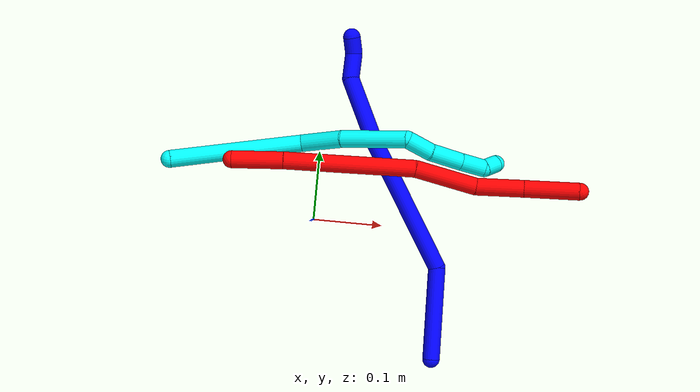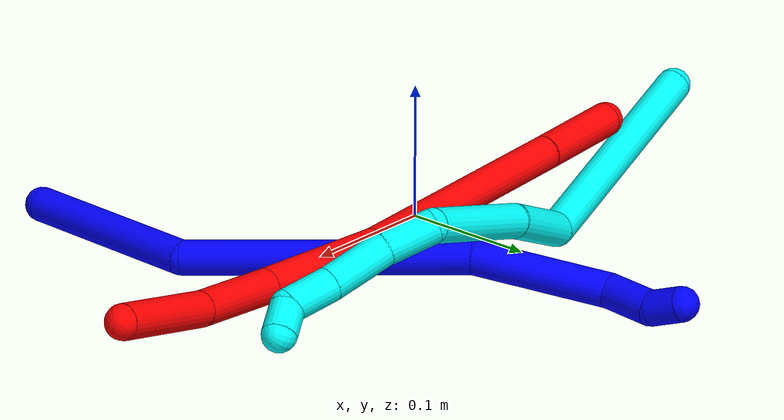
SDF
<sdf version="1.7">
 <world name="default">
  <plugin name="TubeGeneratorPlugin" filename="libtube_generator_plugin.so"/>
  <model name="photoneo_s_sensor">
   <static>1</static>
   <pose>0 0 2 1.57079 1.57079 3.14159</pose>
   <link name="link">
    <inertial><mass>0.1</mass></inertial>
    <sensor name="sensor" type="depth">
     <update_rate>30</update_rate>
     <camera>
      <horizontal_fov>1.22</horizontal_fov>
      <image><width>1920</width><height>1200</height><format>B8G8R8</format></image>
      <clip><near>0.1</near><far>4</far></clip>
      <depth_camera><output>points</output></depth_camera>
     </camera>
     <plugin name="camera_plugin" filename="libgazebo_ros_depth_camera.so">
      <baseline>0.2</baseline>
      <alwaysOn>1</alwaysOn>
      <updateRate>0.0</updateRate>
      <cameraName>camera_ir</cameraName>
      <imageTopicName>/camera/color/image_raw</imageTopicName>
      <cameraInfoTopicName>/camera/color/camera_info</cameraInfoTopicName>
      <depthImageTopicName>/camera/depth/image_raw</depthImageTopicName>
      <depthImageCameraInfoTopicName>/camera/depth/camera_info</depthImageCameraInfoTopicName>
      <pointCloudTopicName>/camera/depth/points</pointCloudTopicName>
      <frameName>fr_optical</frameName>
      <pointCloudCutoff>0.1</pointCloudCutoff>
      <pointCloudCutoffMax>2.0</pointCloudCutoffMax>
      <distortionK1>0</distortionK1>
      <distortionK2>0</distortionK2>
      <distortionK3>0</distortionK3>
      <distortionT1>0</distortionT1>
      <distortionT2>0</distortionT2>
      <CxPrime>0</CxPrime>
      <Cx>0</Cx>
      <Cy>0</Cy>
      <focalLength>0</focalLength>
      <hackBaseline>0</hackBaseline>
     </plugin>
    </sensor>
   </link>
  </model>
  <gravity>0 0 -9.8</gravity>
  <magnetic_field>6e-06 2.3e-05 -4.2e-05</magnetic_field>
  <atmosphere type="adiabatic"/>
  <physics name="default_physics" default="0" type="ode">
   <max_step_size>0.003</max_step_size>
   <real_time_factor>1</real_time_factor>
   <real_time_update_rate>1000</real_time_update_rate>
   <max_contacts>10000</max_contacts>
   <ode>
    <solver>
     <type>quick</type>
     <iters>100</iters>
     <sor>1.3</sor>
     <use_dynamic_moi_rescaling>0</use_dynamic_moi_rescaling>
    </solver>
    <constraints>
     <contact_max_correcting_vel>0</contact_max_correcting_vel>
     <contact_surface_layer>0.001</contact_surface_layer>
     <cfm>0</cfm>
     <erp>0.2</erp>
    </constraints>
   </ode>
  </physics>
  <scene><ambient>0.4 0.4 0.4 1</ambient><background>0.7 0.7 0.7 1</background><shadows>0</shadows></scene>
  <audio><device>default</device></audio>
  <spherical_coordinates>
   <surface_model>EARTH_WGS84</surface_model>
   <latitude_deg>0</latitude_deg>
   <longitude_deg>0</longitude_deg>
   <elevation>0</elevation>
   <heading_deg>0</heading_deg>
  </spherical_coordinates>
  <model name="bin">
   <static>1</static>
   <link name="bottom">
    <collision name="collision-bottom">
     <pose>0 0 -0.01 0 -0 0</pose>
     <geometry><box><size>0.8 0.6 0.02</size></box></geometry>
     <surface>
      <friction><ode><mu>100</mu><mu2>100</mu2></ode></friction>
      <contact><collide_bitmask>65535</collide_bitmask></contact>
     </surface>
    </collision>
   </link>
   <link name="west_wall">
    <collision name="collision-west_wall">
     <pose>-0.41 0 0.1 0 -0 0</pose>
     <geometry><box><size>0.02 0.6 0.2</size></box></geometry>
     <surface>
      <friction><ode><mu>100</mu><mu2>100</mu2></ode></friction>
      <contact><collide_bitmask>65535</collide_bitmask></contact>
     </surface>
    </collision>
   </link>
   <link name="east_wall">
    <collision name="collision-east_wall">
     <pose>0.41 0 0.1 0 -0 0</pose>
     <geometry><box><size>0.02 0.6 0.2</size></box></geometry>
     <surface>
      <friction><ode><mu>100</mu><mu2>100</mu2></ode></friction>
      <contact><collide_bitmask>65535</collide_bitmask></contact>
     </surface>
    </collision>
   </link>
   <link name="south_wall">
    <collision name="collision-south_wall">
     <pose>0 -0.31 0.1 0 -0 0</pose>
     <geometry><box><size>0.8 0.02 0.2</size></box></geometry>
     <surface>
      <friction><ode><mu>100</mu><mu2>100</mu2></ode></friction>
      <contact><collide_bitmask>65535</collide_bitmask></contact>
     </surface>
    </collision>
   </link>
   <link name="north_wall">
    <collision name="collision-north_wall">
     <pose>0 0.31 0.1 0 -0 0</pose>
     <geometry><box><size>0.8 0.02 0.2</size></box></geometry>
     <surface>
      <friction><ode><mu>100</mu><mu2>100</mu2></ode></friction>
      <contact><collide_bitmask>65535</collide_bitmask></contact>
     </surface>
    </collision>
   </link>
  </model>
  <model name="1">
   <static>0</static>
   <link name="1">
    <collision name="collision-cylinder-e_1_1_4">
     <pose>0.023675 0.035769 0.051151 -0.610234 0.362543 -0.115323</pose>
     <geometry><cylinder><radius>0.0125</radius><length>0.133512</length></cylinder></geometry>
     <surface>
      <friction><ode><mu>1.16</mu><mu2>1.16</mu2><slip1>0</slip1><slip2>0</slip2></ode></friction>
      <contact><ode><kp>1e+06</kp><kd>1</kd><max_vel>0</max_vel><min_depth>0.001</min_depth></ode></contact>
     </surface>
    </collision>
    <visual name="visual-cylinder-e_1_1_4">
     <pose>0.023675 0.035769 0.051151 -0.610234 0.362543 -0.115323</pose>
     <geometry><cylinder><radius>0.0125</radius><length>0.133512</length></cylinder></geometry>
     <material><ambient>0 0 1 1</ambient></material>
    </visual>
    <collision name="collision-cylinder-e_2_4_5">
     <pose>0.030447 0.119804 0.192104 -0.493188 -0.164309 0.041447</pose>
     <geometry><cylinder><radius>0.0125</radius><length>0.206685</length></cylinder></geometry>
     <surface>
      <friction><ode><mu>1.16</mu><mu2>1.16</mu2><slip1>0</slip1><slip2>0</slip2></ode></friction>
      <contact><ode><kp>1e+06</kp><kd>1</kd><max_vel>0</max_vel><min_depth>0.001</min_depth></ode></contact>
     </surface>
    </collision>
    <visual name="visual-cylinder-e_2_4_5">
     <pose>0.030447 0.119804 0.192104 -0.493188 -0.164309 0.041447</pose>
     <geometry><cylinder><radius>0.0125</radius><length>0.206685</length></cylinder></geometry>
     <material><ambient>0 0 1 1</ambient></material>
    </visual>
    <collision name="collision-cylinder-e_3_5_6">
     <pose>0.010699 0.199902 0.318902 -0.71048 -0.058209 0.021599</pose>
     <geometry><cylinder><radius>0.0125</radius><length>0.097777</length></cylinder></geometry>
     <surface>
      <friction><ode><mu>1.16</mu><mu2>1.16</mu2><slip1>0</slip1><slip2>0</slip2></ode></friction>
      <contact><ode><kp>1e+06</kp><kd>1</kd><max_vel>0</max_vel><min_depth>0.001</min_depth></ode></contact>
     </surface>
    </collision>
    <visual name="visual-cylinder-e_3_5_6">
     <pose>0.010699 0.199902 0.318902 -0.71048 -0.058209 0.021599</pose>
     <geometry><cylinder><radius>0.0125</radius><length>0.097777</length></cylinder></geometry>
     <material><ambient>0 0 1 1</ambient></material>
    </visual>
    <collision name="collision-cylinder-e_4_6_7">
     <pose>0.015536 0.241902 0.369867 -0.629252 0.418331 -0.137942</pose>
     <geometry><cylinder><radius>0.0125</radius><length>0.037816</length></cylinder></geometry>
     <surface>
      <friction><ode><mu>1.16</mu><mu2>1.16</mu2><slip1>0</slip1><slip2>0</slip2></ode></friction>
      <contact><ode><kp>1e+06</kp><kd>1</kd><max_vel>0</max_vel><min_depth>0.001</min_depth></ode></contact>
     </surface>
    </collision>
    <visual name="visual-cylinder-e_4_6_7">
     <pose>0.015536 0.241902 0.369867 -0.629252 0.418331 -0.137942</pose>
     <geometry><cylinder><radius>0.0125</radius><length>0.037816</length></cylinder></geometry>
     <material><ambient>0 0 1 1</ambient></material>
    </visual>
    <collision name="collision-cylinder-e_5_7_2">
     <pose>0.0252 0.25483 0.395454 -0.233211 0.164569 -0.01932</pose>
     <geometry><cylinder><radius>0.0125</radius><length>0.02421</length></cylinder></geometry>
     <surface>
      <friction><ode><mu>1.16</mu><mu2>1.16</mu2><slip1>0</slip1><slip2>0</slip2></ode></friction>
      <contact><ode><kp>1e+06</kp><kd>1</kd><max_vel>0</max_vel><min_depth>0.001</min_depth></ode></contact>
     </surface>
    </collision>
    <visual name="visual-cylinder-e_5_7_2">
     <pose>0.0252 0.25483 0.395454 -0.233211 0.164569 -0.01932</pose>
     <geometry><cylinder><radius>0.0125</radius><length>0.02421</length></cylinder></geometry>
     <material><ambient>0 0 1 1</ambient></material>
    </visual>
    <collision name="collision-sphere-2">
     <pose>0.027183 0.25759 0.407072 0 -0 0</pose>
     <geometry><sphere><radius>0.0125</radius></sphere></geometry>
     <surface>
      <friction><ode><mu>1.16</mu><mu2>1.16</mu2><slip1>0</slip1><slip2>0</slip2></ode></friction>
      <contact><ode><kp>1e+06</kp><kd>1</kd><max_vel>0</max_vel><min_depth>0.001</min_depth></ode></contact>
     </surface>
    </collision>
    <visual name="visual-sphere-2">
     <pose>0.027183 0.25759 0.407072 0 -0 0</pose>
     <geometry><sphere><radius>0.0125</radius></sphere></geometry>
     <material><ambient>0 0 1 1</ambient></material>
    </visual>
    <collision name="collision-sphere-7">
     <pose>0.023217 0.25207 0.383836 0 -0 0</pose>
     <geometry><sphere><radius>0.0125</radius></sphere></geometry>
     <surface>
      <friction><ode><mu>1.16</mu><mu2>1.16</mu2><slip1>0</slip1><slip2>0</slip2></ode></friction>
      <contact><ode><kp>1e+06</kp><kd>1</kd><max_vel>0</max_vel><min_depth>0.001</min_depth></ode></contact>
     </surface>
    </collision>
    <visual name="visual-sphere-7">
     <pose>0.023217 0.25207 0.383836 0 -0 0</pose>
     <geometry><sphere><radius>0.0125</radius></sphere></geometry>
     <material><ambient>0 0 1 1</ambient></material>
    </visual>
    <collision name="collision-sphere-6">
     <pose>0.007855 0.231733 0.355899 0 -0 0</pose>
     <geometry><sphere><radius>0.0125</radius></sphere></geometry>
     <surface>
      <friction><ode><mu>1.16</mu><mu2>1.16</mu2><slip1>0</slip1><slip2>0</slip2></ode></friction>
      <contact><ode><kp>1e+06</kp><kd>1</kd><max_vel>0</max_vel><min_depth>0.001</min_depth></ode></contact>
     </surface>
    </collision>
    <visual name="visual-sphere-6">
     <pose>0.007855 0.231733 0.355899 0 -0 0</pose>
     <geometry><sphere><radius>0.0125</radius></sphere></geometry>
     <material><ambient>0 0 1 1</ambient></material>
    </visual>
    <collision name="collision-sphere-5">
     <pose>0.013543 0.168071 0.281905 0 -0 0</pose>
     <geometry><sphere><radius>0.0125</radius></sphere></geometry>
     <surface>
      <friction><ode><mu>1.16</mu><mu2>1.16</mu2><slip1>0</slip1><slip2>0</slip2></ode></friction>
      <contact><ode><kp>1e+06</kp><kd>1</kd><max_vel>0</max_vel><min_depth>0.001</min_depth></ode></contact>
     </surface>
    </collision>
    <visual name="visual-sphere-5">
     <pose>0.013543 0.168071 0.281905 0 -0 0</pose>
     <geometry><sphere><radius>0.0125</radius></sphere></geometry>
     <material><ambient>0 0 1 1</ambient></material>
    </visual>
    <collision name="collision-sphere-1">
     <geometry><sphere><radius>0.0125</radius></sphere></geometry>
     <surface>
      <friction><ode><mu>1.16</mu><mu2>1.16</mu2><slip1>0</slip1><slip2>0</slip2></ode></friction>
      <contact><ode><kp>1e+06</kp><kd>1</kd><max_vel>0</max_vel><min_depth>0.001</min_depth></ode></contact>
     </surface>
    </collision>
    <visual name="visual-sphere-1">
     <geometry><sphere><radius>0.0125</radius></sphere></geometry>
     <material><ambient>0 0 1 1</ambient></material>
    </visual>
    <collision name="collision-sphere-4">
     <pose>0.04735 0.071537 0.102303 0 -0 0</pose>
     <geometry><sphere><radius>0.0125</radius></sphere></geometry>
     <surface>
      <friction><ode><mu>1.16</mu><mu2>1.16</mu2><slip1>0</slip1><slip2>0</slip2></ode></friction>
      <contact><ode><kp>1e+06</kp><kd>1</kd><max_vel>0</max_vel><min_depth>0.001</min_depth></ode></contact>
     </surface>
    </collision>
    <visual name="visual-sphere-4">
     <pose>0.04735 0.071537 0.102303 0 -0 0</pose>
     <geometry><sphere><radius>0.0125</radius></sphere></geometry>
     <material><ambient>0 0 1 1</ambient></material>
    </visual>
    <inertial>
     <pose>0.023395 0.1288 0.202553 0 -0 0</pose>
     <mass>0.5</mass>
     <inertia>
      <ixx>0.001023</ixx>
      <ixy>0</ixy>
      <ixz>0</ixz>
      <iyy>0.000926</iyy>
      <iyz>0</iyz>
      <izz>-0.00043</izz>
     </inertia>
    </inertial>
   </link>
   <pose>0.189682 -0.186188 0.016287 -1.00034 -0.003608 0.389707</pose>
  </model>
  <model name="2">
   <static>0</static>
   <link name="2">
    <collision name="collision-cylinder-e_1_1_4">
     <pose>0.017253 0.008949 0.030941 -0.28155 0.491757 -0.071097</pose>
     <geometry><cylinder><radius>0.0125</radius><length>0.073077</length></cylinder></geometry>
     <surface>
      <friction><ode><mu>1.16</mu><mu2>1.16</mu2><slip1>0</slip1><slip2>0</slip2></ode></friction>
      <contact><ode><kp>1e+06</kp><kd>1</kd><max_vel>0</max_vel><min_depth>0.001</min_depth></ode></contact>
     </surface>
    </collision>
    <visual name="visual-cylinder-e_1_1_4">
     <pose>0.017253 0.008949 0.030941 -0.28155 0.491757 -0.071097</pose>
     <geometry><cylinder><radius>0.0125</radius><length>0.073077</length></cylinder></geometry>
     <material><ambient>1 0 0 1</ambient></material>
    </visual>
    <collision name="collision-cylinder-e_2_4_5">
     <pose>0.080961 0.044246 0.139569 -0.326975 0.515268 -0.086876</pose>
     <geometry><cylinder><radius>0.0125</radius><length>0.188549</length></cylinder></geometry>
     <surface>
      <friction><ode><mu>1.16</mu><mu2>1.16</mu2><slip1>0</slip1><slip2>0</slip2></ode></friction>
      <contact><ode><kp>1e+06</kp><kd>1</kd><max_vel>0</max_vel><min_depth>0.001</min_depth></ode></contact>
     </surface>
    </collision>
    <visual name="visual-cylinder-e_2_4_5">
     <pose>0.080961 0.044246 0.139569 -0.326975 0.515268 -0.086876</pose>
     <geometry><cylinder><radius>0.0125</radius><length>0.188549</length></cylinder></geometry>
     <material><ambient>1 0 0 1</ambient></material>
    </visual>
    <collision name="collision-cylinder-e_3_5_6">
     <pose>0.156276 0.087405 0.248186 -0.497874 0.686708 -0.18127</pose>
     <geometry><cylinder><radius>0.0125</radius><length>0.091042</length></cylinder></geometry>
     <surface>
      <friction><ode><mu>1.16</mu><mu2>1.16</mu2><slip1>0</slip1><slip2>0</slip2></ode></friction>
      <contact><ode><kp>1e+06</kp><kd>1</kd><max_vel>0</max_vel><min_depth>0.001</min_depth></ode></contact>
     </surface>
    </collision>
    <visual name="visual-cylinder-e_3_5_6">
     <pose>0.156276 0.087405 0.248186 -0.497874 0.686708 -0.18127</pose>
     <geometry><cylinder><radius>0.0125</radius><length>0.091042</length></cylinder></geometry>
     <material><ambient>1 0 0 1</ambient></material>
    </visual>
    <collision name="collision-cylinder-e_4_6_7">
     <pose>0.203856 0.109191 0.307546 -0.173227 0.575398 -0.051377</pose>
     <geometry><cylinder><radius>0.0125</radius><length>0.068803</length></cylinder></geometry>
     <surface>
      <friction><ode><mu>1.16</mu><mu2>1.16</mu2><slip1>0</slip1><slip2>0</slip2></ode></friction>
      <contact><ode><kp>1e+06</kp><kd>1</kd><max_vel>0</max_vel><min_depth>0.001</min_depth></ode></contact>
     </surface>
    </collision>
    <visual name="visual-cylinder-e_4_6_7">
     <pose>0.203856 0.109191 0.307546 -0.173227 0.575398 -0.051377</pose>
     <geometry><cylinder><radius>0.0125</radius><length>0.068803</length></cylinder></geometry>
     <material><ambient>1 0 0 1</ambient></material>
    </visual>
    <collision name="collision-cylinder-e_5_7_2">
     <pose>0.245916 0.115525 0.367521 -0.043072 0.636546 -0.014193</pose>
     <geometry><cylinder><radius>0.0125</radius><length>0.078529</length></cylinder></geometry>
     <surface>
      <friction><ode><mu>1.16</mu><mu2>1.16</mu2><slip1>0</slip1><slip2>0</slip2></ode></friction>
      <contact><ode><kp>1e+06</kp><kd>1</kd><max_vel>0</max_vel><min_depth>0.001</min_depth></ode></contact>
     </surface>
    </collision>
    <visual name="visual-cylinder-e_5_7_2">
     <pose>0.245916 0.115525 0.367521 -0.043072 0.636546 -0.014193</pose>
     <geometry><cylinder><radius>0.0125</radius><length>0.078529</length></cylinder></geometry>
     <material><ambient>1 0 0 1</ambient></material>
    </visual>
    <collision name="collision-sphere-2">
     <pose>0.269256 0.116885 0.399067 0 -0 0</pose>
     <geometry><sphere><radius>0.0125</radius></sphere></geometry>
     <surface>
      <friction><ode><mu>1.16</mu><mu2>1.16</mu2><slip1>0</slip1><slip2>0</slip2></ode></friction>
      <contact><ode><kp>1e+06</kp><kd>1</kd><max_vel>0</max_vel><min_depth>0.001</min_depth></ode></contact>
     </surface>
    </collision>
    <visual name="visual-sphere-2">
     <pose>0.269256 0.116885 0.399067 0 -0 0</pose>
     <geometry><sphere><radius>0.0125</radius></sphere></geometry>
     <material><ambient>1 0 0 1</ambient></material>
    </visual>
    <collision name="collision-sphere-7">
     <pose>0.222577 0.114166 0.335976 0 -0 0</pose>
     <geometry><sphere><radius>0.0125</radius></sphere></geometry>
     <surface>
      <friction><ode><mu>1.16</mu><mu2>1.16</mu2><slip1>0</slip1><slip2>0</slip2></ode></friction>
      <contact><ode><kp>1e+06</kp><kd>1</kd><max_vel>0</max_vel><min_depth>0.001</min_depth></ode></contact>
     </surface>
    </collision>
    <visual name="visual-sphere-7">
     <pose>0.222577 0.114166 0.335976 0 -0 0</pose>
     <geometry><sphere><radius>0.0125</radius></sphere></geometry>
     <material><ambient>1 0 0 1</ambient></material>
    </visual>
    <collision name="collision-sphere-6">
     <pose>0.185136 0.104216 0.279115 0 -0 0</pose>
     <geometry><sphere><radius>0.0125</radius></sphere></geometry>
     <surface>
      <friction><ode><mu>1.16</mu><mu2>1.16</mu2><slip1>0</slip1><slip2>0</slip2></ode></friction>
      <contact><ode><kp>1e+06</kp><kd>1</kd><max_vel>0</max_vel><min_depth>0.001</min_depth></ode></contact>
     </surface>
    </collision>
    <visual name="visual-sphere-6">
     <pose>0.185136 0.104216 0.279115 0 -0 0</pose>
     <geometry><sphere><radius>0.0125</radius></sphere></geometry>
     <material><ambient>1 0 0 1</ambient></material>
    </visual>
    <collision name="collision-sphere-5">
     <pose>0.127416 0.070593 0.217257 0 -0 0</pose>
     <geometry><sphere><radius>0.0125</radius></sphere></geometry>
     <surface>
      <friction><ode><mu>1.16</mu><mu2>1.16</mu2><slip1>0</slip1><slip2>0</slip2></ode></friction>
      <contact><ode><kp>1e+06</kp><kd>1</kd><max_vel>0</max_vel><min_depth>0.001</min_depth></ode></contact>
     </surface>
    </collision>
    <visual name="visual-sphere-5">
     <pose>0.127416 0.070593 0.217257 0 -0 0</pose>
     <geometry><sphere><radius>0.0125</radius></sphere></geometry>
     <material><ambient>1 0 0 1</ambient></material>
    </visual>
    <collision name="collision-sphere-1">
     <geometry><sphere><radius>0.0125</radius></sphere></geometry>
     <surface>
      <friction><ode><mu>1.16</mu><mu2>1.16</mu2><slip1>0</slip1><slip2>0</slip2></ode></friction>
      <contact><ode><kp>1e+06</kp><kd>1</kd><max_vel>0</max_vel><min_depth>0.001</min_depth></ode></contact>
     </surface>
    </collision>
    <visual name="visual-sphere-1">
     <geometry><sphere><radius>0.0125</radius></sphere></geometry>
     <material><ambient>1 0 0 1</ambient></material>
    </visual>
    <collision name="collision-sphere-4">
     <pose>0.034505 0.017898 0.061881 0 -0 0</pose>
     <geometry><sphere><radius>0.0125</radius></sphere></geometry>
     <surface>
      <friction><ode><mu>1.16</mu><mu2>1.16</mu2><slip1>0</slip1><slip2>0</slip2></ode></friction>
      <contact><ode><kp>1e+06</kp><kd>1</kd><max_vel>0</max_vel><min_depth>0.001</min_depth></ode></contact>
     </surface>
    </collision>
    <visual name="visual-sphere-4">
     <pose>0.034505 0.017898 0.061881 0 -0 0</pose>
     <geometry><sphere><radius>0.0125</radius></sphere></geometry>
     <material><ambient>1 0 0 1</ambient></material>
    </visual>
    <inertial>
     <pose>0.128182 0.067078 0.202386 0 -0 0</pose>
     <mass>0.5</mass>
     <inertia>
      <ixx>0.000597</ixx>
      <ixy>0</ixy>
      <ixz>0</ixz>
      <iyy>0.000663</iyy>
      <iyz>0</iyz>
      <izz>-0.000546</izz>
     </inertia>
    </inertial>
   </link>
   <pose>-0.120614 0.075892 0.058885 -1.60297 -0.457743 -0.924092</pose>
  </model>
  <model name="3">
   <static>0</static>
   <link name="3">
    <collision name="collision-cylinder-e_1_1_4">
     <pose>0.068602 0.007406 0.066575 -0.110792 0.797317 -0.046706</pose>
     <geometry><cylinder><radius>0.0125</radius><length>0.191764</length></cylinder></geometry>
     <surface>
      <friction><ode><mu>1.16</mu><mu2>1.16</mu2><slip1>0</slip1><slip2>0</slip2></ode></friction>
      <contact><ode><kp>1e+06</kp><kd>1</kd><max_vel>0</max_vel><min_depth>0.001</min_depth></ode></contact>
     </surface>
    </collision>
    <visual name="visual-cylinder-e_1_1_4">
     <pose>0.068602 0.007406 0.066575 -0.110792 0.797317 -0.046706</pose>
     <geometry><cylinder><radius>0.0125</radius><length>0.191764</length></cylinder></geometry>
     <material><ambient>0.003922 1 0.996078 1</ambient></material>
    </visual>
    <collision name="collision-cylinder-e_2_4_5">
     <pose>0.141889 0.025041 0.16386 -0.321518 0.143756 -0.02335</pose>
     <geometry><cylinder><radius>0.0125</radius><length>0.065412</length></cylinder></geometry>
     <surface>
      <friction><ode><mu>1.16</mu><mu2>1.16</mu2><slip1>0</slip1><slip2>0</slip2></ode></friction>
      <contact><ode><kp>1e+06</kp><kd>1</kd><max_vel>0</max_vel><min_depth>0.001</min_depth></ode></contact>
     </surface>
    </collision>
    <visual name="visual-cylinder-e_2_4_5">
     <pose>0.141889 0.025041 0.16386 -0.321518 0.143756 -0.02335</pose>
     <geometry><cylinder><radius>0.0125</radius><length>0.065412</length></cylinder></geometry>
     <material><ambient>0.003922 1 0.996078 1</ambient></material>
    </visual>
    <collision name="collision-cylinder-e_3_5_6">
     <pose>0.15865 0.043471 0.24066 -0.176083 0.252431 -0.0224</pose>
     <geometry><cylinder><radius>0.0125</radius><length>0.096692</length></cylinder></geometry>
     <surface>
      <friction><ode><mu>1.16</mu><mu2>1.16</mu2><slip1>0</slip1><slip2>0</slip2></ode></friction>
      <contact><ode><kp>1e+06</kp><kd>1</kd><max_vel>0</max_vel><min_depth>0.001</min_depth></ode></contact>
     </surface>
    </collision>
    <visual name="visual-cylinder-e_3_5_6">
     <pose>0.15865 0.043471 0.24066 -0.176083 0.252431 -0.0224</pose>
     <geometry><cylinder><radius>0.0125</radius><length>0.096692</length></cylinder></geometry>
     <material><ambient>0.003922 1 0.996078 1</ambient></material>
    </visual>
    <collision name="collision-cylinder-e_4_6_7">
     <pose>0.179977 0.042864 0.301419 0.540709 0.495747 0.140047</pose>
     <geometry><cylinder><radius>0.0125</radius><length>0.038903</length></cylinder></geometry>
     <surface>
      <friction><ode><mu>1.16</mu><mu2>1.16</mu2><slip1>0</slip1><slip2>0</slip2></ode></friction>
      <contact><ode><kp>1e+06</kp><kd>1</kd><max_vel>0</max_vel><min_depth>0.001</min_depth></ode></contact>
     </surface>
    </collision>
    <visual name="visual-cylinder-e_4_6_7">
     <pose>0.179977 0.042864 0.301419 0.540709 0.495747 0.140047</pose>
     <geometry><cylinder><radius>0.0125</radius><length>0.038903</length></cylinder></geometry>
     <material><ambient>0.003922 1 0.996078 1</ambient></material>
    </visual>
    <collision name="collision-cylinder-e_5_7_8">
     <pose>0.203561 0.026569 0.333827 0.39945 0.639846 0.133927</pose>
     <geometry><cylinder><radius>0.0125</radius><length>0.048005</length></cylinder></geometry>
     <surface>
      <friction><ode><mu>1.16</mu><mu2>1.16</mu2><slip1>0</slip1><slip2>0</slip2></ode></friction>
      <contact><ode><kp>1e+06</kp><kd>1</kd><max_vel>0</max_vel><min_depth>0.001</min_depth></ode></contact>
     </surface>
    </collision>
    <visual name="visual-cylinder-e_5_7_8">
     <pose>0.203561 0.026569 0.333827 0.39945 0.639846 0.133927</pose>
     <geometry><cylinder><radius>0.0125</radius><length>0.048005</length></cylinder></geometry>
     <material><ambient>0.003922 1 0.996078 1</ambient></material>
    </visual>
    <collision name="collision-cylinder-e_6_8_9">
     <pose>0.22744 0.01463 0.366203 0.295183 0.557908 0.085115</pose>
     <geometry><cylinder><radius>0.0125</radius><length>0.036069</length></cylinder></geometry>
     <surface>
      <friction><ode><mu>1.16</mu><mu2>1.16</mu2><slip1>0</slip1><slip2>0</slip2></ode></friction>
      <contact><ode><kp>1e+06</kp><kd>1</kd><max_vel>0</max_vel><min_depth>0.001</min_depth></ode></contact>
     </surface>
    </collision>
    <visual name="visual-cylinder-e_6_8_9">
     <pose>0.22744 0.01463 0.366203 0.295183 0.557908 0.085115</pose>
     <geometry><cylinder><radius>0.0125</radius><length>0.036069</length></cylinder></geometry>
     <material><ambient>0.003922 1 0.996078 1</ambient></material>
    </visual>
    <collision name="collision-cylinder-e_7_9_2">
     <pose>0.24768 0.011179 0.385168 -0.227117 1.17714 -0.15196</pose>
     <geometry><cylinder><radius>0.0125</radius><length>0.023156</length></cylinder></geometry>
     <surface>
      <friction><ode><mu>1.16</mu><mu2>1.16</mu2><slip1>0</slip1><slip2>0</slip2></ode></friction>
      <contact><ode><kp>1e+06</kp><kd>1</kd><max_vel>0</max_vel><min_depth>0.001</min_depth></ode></contact>
     </surface>
    </collision>
    <visual name="visual-cylinder-e_7_9_2">
     <pose>0.24768 0.011179 0.385168 -0.227117 1.17714 -0.15196</pose>
     <geometry><cylinder><radius>0.0125</radius><length>0.023156</length></cylinder></geometry>
     <material><ambient>0.003922 1 0.996078 1</ambient></material>
    </visual>
    <collision name="collision-sphere-2">
     <pose>0.258373 0.012179 0.389495 0 -0 0</pose>
     <geometry><sphere><radius>0.0125</radius></sphere></geometry>
     <surface>
      <friction><ode><mu>1.16</mu><mu2>1.16</mu2><slip1>0</slip1><slip2>0</slip2></ode></friction>
      <contact><ode><kp>1e+06</kp><kd>1</kd><max_vel>0</max_vel><min_depth>0.001</min_depth></ode></contact>
     </surface>
    </collision>
    <visual name="visual-sphere-2">
     <pose>0.258373 0.012179 0.389495 0 -0 0</pose>
     <geometry><sphere><radius>0.0125</radius></sphere></geometry>
     <material><ambient>0.003922 1 0.996078 1</ambient></material>
    </visual>
    <collision name="collision-sphere-9">
     <pose>0.236988 0.010179 0.380841 0 -0 0</pose>
     <geometry><sphere><radius>0.0125</radius></sphere></geometry>
     <surface>
      <friction><ode><mu>1.16</mu><mu2>1.16</mu2><slip1>0</slip1><slip2>0</slip2></ode></friction>
      <contact><ode><kp>1e+06</kp><kd>1</kd><max_vel>0</max_vel><min_depth>0.001</min_depth></ode></contact>
     </surface>
    </collision>
    <visual name="visual-sphere-9">
     <pose>0.236988 0.010179 0.380841 0 -0 0</pose>
     <geometry><sphere><radius>0.0125</radius></sphere></geometry>
     <material><ambient>0.003922 1 0.996078 1</ambient></material>
    </visual>
    <collision name="collision-sphere-4">
     <pose>0.137204 0.014813 0.13315 0 -0 0</pose>
     <geometry><sphere><radius>0.0125</radius></sphere></geometry>
     <surface>
      <friction><ode><mu>1.16</mu><mu2>1.16</mu2><slip1>0</slip1><slip2>0</slip2></ode></friction>
      <contact><ode><kp>1e+06</kp><kd>1</kd><max_vel>0</max_vel><min_depth>0.001</min_depth></ode></contact>
     </surface>
    </collision>
    <visual name="visual-sphere-4">
     <pose>0.137204 0.014813 0.13315 0 -0 0</pose>
     <geometry><sphere><radius>0.0125</radius></sphere></geometry>
     <material><ambient>0.003922 1 0.996078 1</ambient></material>
    </visual>
    <collision name="collision-sphere-1">
     <geometry><sphere><radius>0.0125</radius></sphere></geometry>
     <surface>
      <friction><ode><mu>1.16</mu><mu2>1.16</mu2><slip1>0</slip1><slip2>0</slip2></ode></friction>
      <contact><ode><kp>1e+06</kp><kd>1</kd><max_vel>0</max_vel><min_depth>0.001</min_depth></ode></contact>
     </surface>
    </collision>
    <visual name="visual-sphere-1">
     <geometry><sphere><radius>0.0125</radius></sphere></geometry>
     <material><ambient>0.003922 1 0.996078 1</ambient></material>
    </visual>
    <collision name="collision-sphere-8">
     <pose>0.217892 0.019081 0.351565 0 -0 0</pose>
     <geometry><sphere><radius>0.0125</radius></sphere></geometry>
     <surface>
      <friction><ode><mu>1.16</mu><mu2>1.16</mu2><slip1>0</slip1><slip2>0</slip2></ode></friction>
      <contact><ode><kp>1e+06</kp><kd>1</kd><max_vel>0</max_vel><min_depth>0.001</min_depth></ode></contact>
     </surface>
    </collision>
    <visual name="visual-sphere-8">
     <pose>0.217892 0.019081 0.351565 0 -0 0</pose>
     <geometry><sphere><radius>0.0125</radius></sphere></geometry>
     <material><ambient>0.003922 1 0.996078 1</ambient></material>
    </visual>
    <collision name="collision-sphere-5">
     <pose>0.146575 0.03527 0.19457 0 -0 0</pose>
     <geometry><sphere><radius>0.0125</radius></sphere></geometry>
     <surface>
      <friction><ode><mu>1.16</mu><mu2>1.16</mu2><slip1>0</slip1><slip2>0</slip2></ode></friction>
      <contact><ode><kp>1e+06</kp><kd>1</kd><max_vel>0</max_vel><min_depth>0.001</min_depth></ode></contact>
     </surface>
    </collision>
    <visual name="visual-sphere-5">
     <pose>0.146575 0.03527 0.19457 0 -0 0</pose>
     <geometry><sphere><radius>0.0125</radius></sphere></geometry>
     <material><ambient>0.003922 1 0.996078 1</ambient></material>
    </visual>
    <collision name="collision-sphere-6">
     <pose>0.170725 0.051671 0.28675 0 -0 0</pose>
     <geometry><sphere><radius>0.0125</radius></sphere></geometry>
     <surface>
      <friction><ode><mu>1.16</mu><mu2>1.16</mu2><slip1>0</slip1><slip2>0</slip2></ode></friction>
      <contact><ode><kp>1e+06</kp><kd>1</kd><max_vel>0</max_vel><min_depth>0.001</min_depth></ode></contact>
     </surface>
    </collision>
    <visual name="visual-sphere-6">
     <pose>0.170725 0.051671 0.28675 0 -0 0</pose>
     <geometry><sphere><radius>0.0125</radius></sphere></geometry>
     <material><ambient>0.003922 1 0.996078 1</ambient></material>
    </visual>
    <collision name="collision-sphere-7">
     <pose>0.18923 0.034057 0.316088 0 -0 0</pose>
     <geometry><sphere><radius>0.0125</radius></sphere></geometry>
     <surface>
      <friction><ode><mu>1.16</mu><mu2>1.16</mu2><slip1>0</slip1><slip2>0</slip2></ode></friction>
      <contact><ode><kp>1e+06</kp><kd>1</kd><max_vel>0</max_vel><min_depth>0.001</min_depth></ode></contact>
     </surface>
    </collision>
    <visual name="visual-sphere-7">
     <pose>0.18923 0.034057 0.316088 0 -0 0</pose>
     <geometry><sphere><radius>0.0125</radius></sphere></geometry>
     <material><ambient>0.003922 1 0.996078 1</ambient></material>
    </visual>
    <inertial>
     <pose>0.136978 0.021982 0.193268 0 -0 0</pose>
     <mass>0.5</mass>
     <inertia>
      <ixx>0.000538</ixx>
      <ixy>0</ixy>
      <ixz>0</ixz>
      <iyy>0.0007</iyy>
      <iyz>0</iyz>
      <izz>-0.000493</izz>
     </inertia>
    </inertial>
   </link>
   <pose>-0.208022 0.068336 0.058392 0.807311 0.916924 0.705043</pose>
  </model>
 </world>
</sdf>
